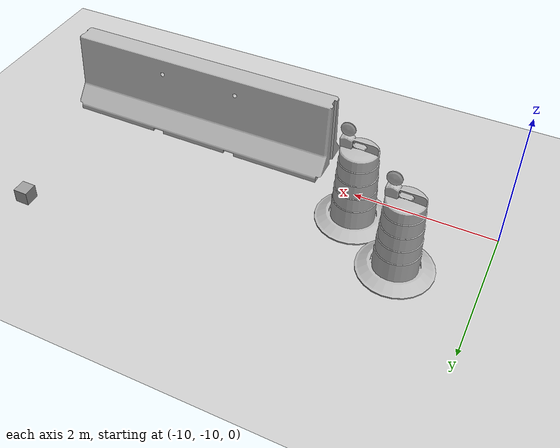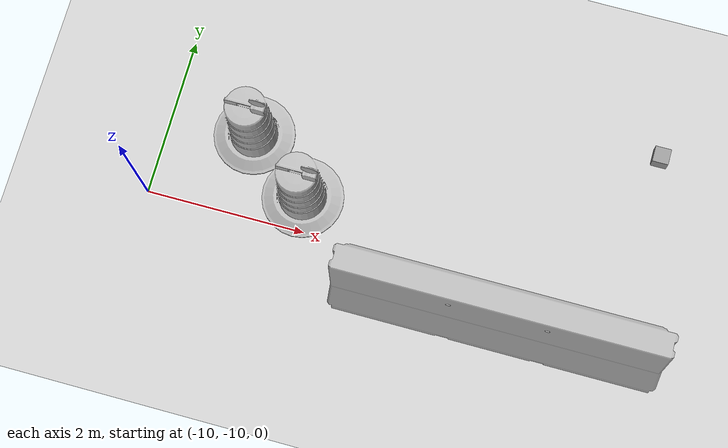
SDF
<sdf version="1.7">
 <world name="default">
  <model name="ground_plane">
   <static>1</static>
   <link name="link">
    <collision name="collision">
     <geometry><plane><normal>0 0 1</normal><size>100 100</size></plane></geometry>
     <surface><friction><ode><mu>100</mu><mu2>50</mu2></ode></friction></surface>
    </collision>
    <visual name="visual">
     <cast_shadows>0</cast_shadows>
     <geometry><plane><normal>0 0 1</normal><size>100 100</size></plane></geometry>
     <material>
      <script><uri>file://media/materials/scripts/gazebo.material</uri><name>Gazebo/Grey</name></script>
     </material>
    </visual>
   </link>
  </model>
  <model name="jersey_barrier_clone_2_clone_2">
   <static>1</static>
   <link name="link">
    <visual name="visual">
     <geometry><mesh><uri>model://jersey_barrier/meshes/jersey_barrier.dae</uri></mesh></geometry>
    </visual>
    <collision name="upright">
     <pose>0 0 0.5715 0 -0 0</pose>
     <geometry><box><size>4.06542 0.3063 1.143</size></box></geometry>
    </collision>
    <collision name="base">
     <pose>0 0 0.032258 0 -0 0</pose>
     <geometry><box><size>4.06542 0.8107 0.064516</size></box></geometry>
    </collision>
    <collision name="base2">
     <pose>0 0 0.1 0 -0 0</pose>
     <geometry><box><size>4.06542 0.65 0.1</size></box></geometry>
    </collision>
    <collision name="base3">
     <pose>0 0 0.2 0 -0 0</pose>
     <geometry><box><size>4.06542 0.5 0.1</size></box></geometry>
    </collision>
    <collision name="left-angle">
     <pose>0 -0.224 0.2401 0.9 -0 0</pose>
     <geometry><box><size>4.06542 0.5 0.064516</size></box></geometry>
    </collision>
    <collision name="right-angle">
     <pose>0 0.224 0.2401 -0.9 0 0</pose>
     <geometry><box><size>4.06542 0.5 0.064516</size></box></geometry>
    </collision>
   </link>
   <pose>-5.44605 -10.4002 0 0 -0 0</pose>
  </model>
  <model name="Construction Barrel_4">
   <link name="link">
    <inertial>
     <pose>0 0 0.4 0 -0 0</pose>
     <mass>500</mass>
     <inertia><ixx>51.2096</ixx><iyy>51.2096</iyy><izz>25</izz><ixy>0</ixy><ixz>0</ixz><iyz>0</iyz></inertia>
    </inertial>
    <collision name="collision">
     <geometry><mesh><uri>model://construction_barrel/meshes/construction_barrel.dae</uri></mesh></geometry>
    </collision>
    <visual name="visual">
     <geometry><mesh><uri>model://construction_barrel/meshes/construction_barrel.dae</uri></mesh></geometry>
    </visual>
   </link>
   <pose>-8.13329 -9.57183 -1e-06 2e-06 -1e-06 -0.000549</pose>
  </model>
  <model name="Construction Barrel_5">
   <link name="link">
    <inertial>
     <pose>0 0 0.4 0 -0 0</pose>
     <mass>500</mass>
     <inertia><ixx>51.2096</ixx><iyy>51.2096</iyy><izz>25</izz><ixy>0</ixy><ixz>0</ixz><iyz>0</iyz></inertia>
    </inertial>
    <collision name="collision">
     <geometry><mesh><uri>model://construction_barrel/meshes/construction_barrel.dae</uri></mesh></geometry>
    </collision>
    <visual name="visual">
     <geometry><mesh><uri>model://construction_barrel/meshes/construction_barrel.dae</uri></mesh></geometry>
    </visual>
   </link>
   <pose>-8.9386 -8.96014 -1e-06 2e-06 -1e-06 -0.000441</pose>
  </model>
  <model name="marker13_box">
   <link name="marker">
    <inertial>
     <mass>0.1</mass>
     <inertia><ixx>0</ixx><ixy>0</ixy><ixz>0</ixz><iyy>0</iyy><iyz>0</iyz><izz>0</izz></inertia>
    </inertial>
    <self_collide>1</self_collide>
    <pose>-0.76428 -0.101106 0.120004 -0.015494 1.56996 -0.015507</pose>
    <visual name="visual">
     <geometry><box><size>0.2 0.2 0.001</size></box></geometry>
     <material>
      <script>
       <uri>model://marker13/material/scripts</uri>
       <uri>model://marker13/material/textures</uri>
       <name>Aruco/marker13</name>
      </script>
      <shader type="pixel"><normal_map>__default__</normal_map></shader>
      <emissive>0 0 0 1</emissive>
      <ambient>1 1 1 1</ambient>
      <diffuse>1 1 1 1</diffuse>
      <specular>0 0 0 1</specular>
     </material>
    </visual>
    <collision name="collision">
     <geometry><box><size>0.2 0.2 0.02</size></box></geometry>
     <surface>
      <friction>
       <ode><mu>1</mu><mu2>1</mu2><fdir1>0 0 0</fdir1><slip1>0</slip1><slip2>0</slip2></ode>
       <torsional>
        <coefficient>1</coefficient>
        <patch_radius>0</patch_radius>
        <surface_radius>0</surface_radius>
        <use_patch_radius>1</use_patch_radius>
        <ode><slip>0</slip></ode>
       </torsional>
      </friction>
      <bounce><restitution_coefficient>0</restitution_coefficient><threshold>1e+06</threshold></bounce>
      <contact>
       <collide_without_contact>0</collide_without_contact>
       <collide_without_contact_bitmask>1</collide_without_contact_bitmask>
       <collide_bitmask>1</collide_bitmask>
       <ode>
        <soft_cfm>0</soft_cfm>
        <soft_erp>0.2</soft_erp>
        <kp>1e+13</kp>
        <kd>1</kd>
        <max_vel>0.01</max_vel>
        <min_depth>0</min_depth>
       </ode>
       <bullet>
        <split_impulse>1</split_impulse>
        <split_impulse_penetration_threshold>-0.01</split_impulse_penetration_threshold>
        <soft_cfm>0</soft_cfm>
        <soft_erp>0.2</soft_erp>
        <kp>1e+13</kp>
        <kd>1</kd>
       </bullet>
      </contact>
     </surface>
    </collision>
   </link>
   <link name="link_1">
    <inertial>
     <mass>1</mass>
     <inertia>
      <ixx>0.166667</ixx>
      <ixy>0</ixy>
      <ixz>0</ixz>
      <iyy>0.166667</iyy>
      <iyz>0</iyz>
      <izz>0.166667</izz>
     </inertia>
    </inertial>
    <pose>-0.86428 -0.101106 0.12 -1.3e-05 -4.2e-05 0</pose>
    <visual name="visual">
     <geometry><box><size>0.2 0.2 0.2</size></box></geometry>
     <material>
      <lighting>1</lighting>
      <script><uri>file://media/materials/scripts/gazebo.material</uri><name>Gazebo/Grey</name></script>
      <shader type="pixel"><normal_map>__default__</normal_map></shader>
      <emissive>0 0 0 1</emissive>
      <ambient>0.3 0.3 0.3 1</ambient>
      <diffuse>0.7 0.7 0.7 1</diffuse>
      <specular>0.01 0.01 0.01 1</specular>
     </material>
    </visual>
    <collision name="collision">
     <geometry><box><size>0.2 0.2 0.2</size></box></geometry>
     <surface>
      <friction>
       <ode><mu>1</mu><mu2>1</mu2><fdir1>0 0 0</fdir1><slip1>0</slip1><slip2>0</slip2></ode>
       <torsional>
        <coefficient>1</coefficient>
        <patch_radius>0</patch_radius>
        <surface_radius>0</surface_radius>
        <use_patch_radius>1</use_patch_radius>
        <ode><slip>0</slip></ode>
       </torsional>
      </friction>
      <bounce><restitution_coefficient>0</restitution_coefficient><threshold>1e+06</threshold></bounce>
      <contact>
       <collide_without_contact>0</collide_without_contact>
       <collide_without_contact_bitmask>1</collide_without_contact_bitmask>
       <collide_bitmask>1</collide_bitmask>
       <ode>
        <soft_cfm>0</soft_cfm>
        <soft_erp>0.2</soft_erp>
        <kp>1e+13</kp>
        <kd>1</kd>
        <max_vel>0.01</max_vel>
        <min_depth>0</min_depth>
       </ode>
       <bullet>
        <split_impulse>1</split_impulse>
        <split_impulse_penetration_threshold>-0.01</split_impulse_penetration_threshold>
        <soft_cfm>0</soft_cfm>
        <soft_erp>0.2</soft_erp>
        <kp>1e+13</kp>
        <kd>1</kd>
       </bullet>
      </contact>
     </surface>
    </collision>
   </link>
   <joint name="link_1_JOINT_3" type="fixed">
    <parent>link_1</parent>
    <child>marker</child>
    <physics>
     <ode><limit><cfm>0</cfm><erp>0.2</erp></limit><suspension><cfm>0</cfm><erp>0.2</erp></suspension></ode>
    </physics>
   </joint>
   <static>0</static>
   <pose>-3.12834 -7.83833 -0.020009 9e-06 1.8e-05 0.000259</pose>
  </model>
 </world>
</sdf>
